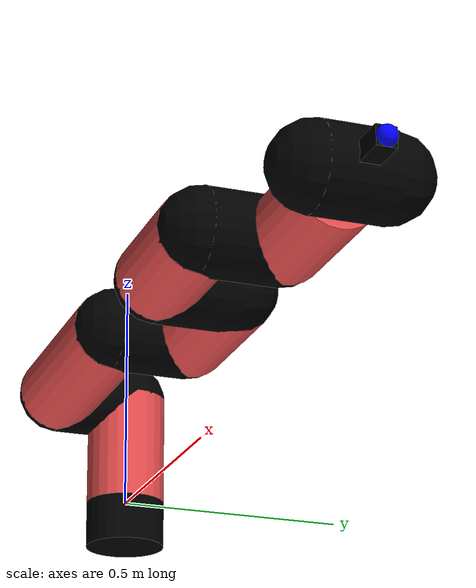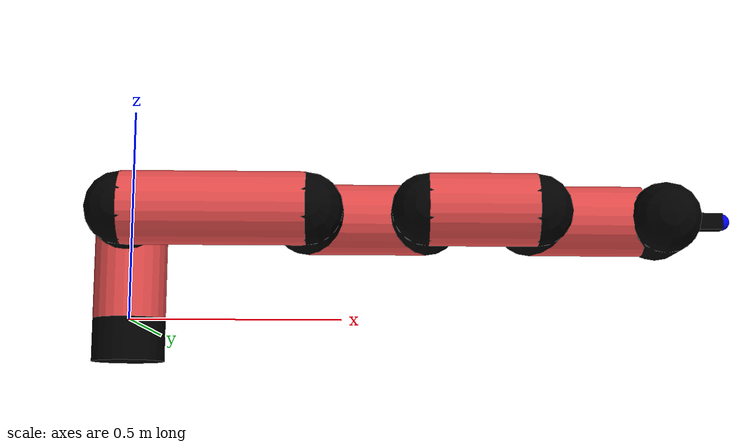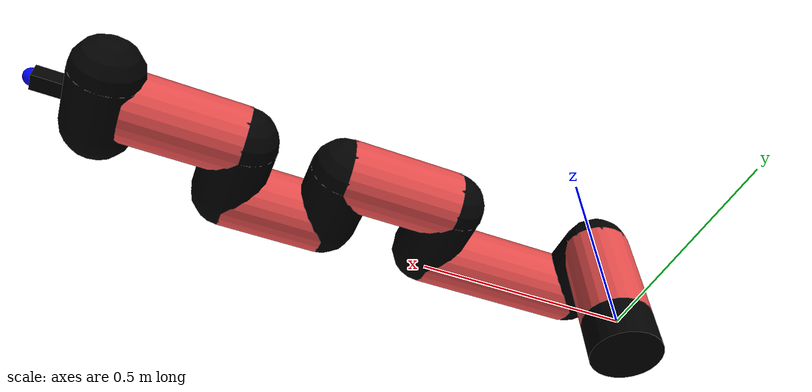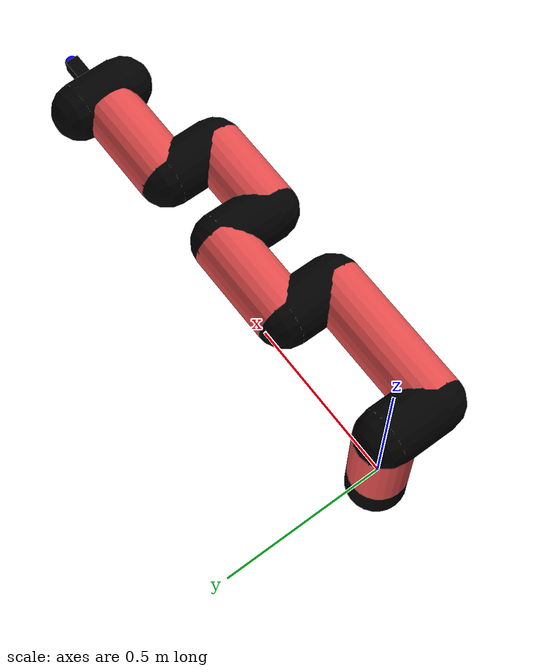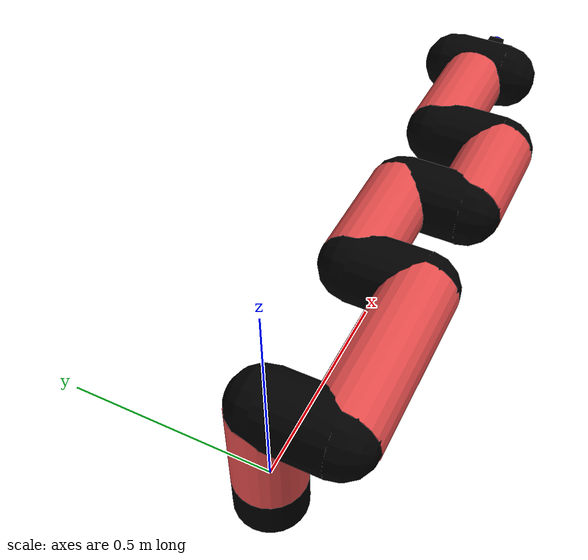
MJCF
<mujoco model="manipulator">
		<compiler angle="degree" coordinate="local" inertiafromgeom="auto" meshdir="meshes/"/>
		<option gravity="0 0 0" integrator="RK4" iterations="30" timestep="0.01"/>

		<default>
		<joint armature="1" limited="true" stiffness="10" damping="15" frictionloss="5.0"/>
		<geom conaffinity="1" condim="3" contype="1" friction=".5 .1 .1" margin="0.002"/>
		<motor ctrllimited="true"/>
		<position ctrllimited="true"/>
		</default>

		<asset>
		<texture builtin="gradient" height="100" rgb1="1.0 1.0 1.0" rgb2="1.0 1.0 1.0" type="skybox" width="100"/>
		<texture builtin="flat" height="32" name="arm_tex" rgb1="0.9 0.3 0.3" type="2d" width="32"/>
		<texture builtin="flat" height="32" name="gripper_tex" rgb1="0.0 0.0 0.0" type="cube" width="32"/>

		<material name="arm_mat" shininess="0.1" specular="0.1" texture="arm_tex"/>
		<material name="gripper_mat" shininess="1" specular="1" texture="gripper_tex"/>
		</asset>

		<worldbody>
		<light cutoff="45" diffuse=".8 .8 .8" dir="0 0.16 -1" directional="false" name="light" pos="0 -2.0 8.0" specular="0.3 0.3 0.3"/>

		<body name="base_link" pos="0 0 -0.1">
		<geom fromto="0 0 0 0 0 0.1" material="arm_mat" name="base_link" rgba="0.0 0.0 0.0 1" size="0.085" type="cylinder"/>
		</body>

		<body name="l1" pos="0 0 0">
<geom fromto="0 0 0 0 0 0.24" material="arm_mat" name="l1" rgba="0.9 0.3 0.3 1" size="0.085" type="cylinder"/>
<geom fromto="0 0 0.24 0 -0.16 0.24" material="arm_mat" name="l1_ex" rgba="0.0 0.0 0.0 1" size="0.085" type="capsule"/>
<joint axis="0 0 1" name="j1" pos="0 0 0" range="-90 90" damping="23.3" frictionloss="8.98"/>

<body name="l2" pos="0 -0.16 0.24">
<geom fromto="0 0 0 0.42 0 0" material="arm_mat" name="l2" rgba="0.9 0.3 0.3 1" size="0.085" type="cylinder"/>
<geom fromto="0.42 0 0 0.42 0.16 0" material="arm_mat" name="l2_ex" rgba="0.0 0.0 0.0 1" size="0.085" type="capsule"/>
<joint axis="0.0 1.0 0.0" name="j2" pos="0 0 0" range="-90 60" damping="25.62" frictionloss="11.68"/>

<body name="l3" pos="0.42 0.16 0">
<geom fromto="0 0 0 0.28 0 0" material="arm_mat" name="l3" rgba="0.9 0.3 0.3 1" size="0.085" type="cylinder"/>
<geom fromto="0.28 0 0 0.28 -0.16 0" material="arm_mat" name="l3_ex" rgba="0.0 0.0 0.0 1" size="0.085" type="capsule"/>
<joint axis="0.0 1.0 0.0" name="j3" pos="0 0 0" range="-30 60" damping="35.57" frictionloss="12.49"/>

<body name="l4" pos="0.28 -0.16 0">
<geom fromto="0 0 0 0.25 0 0" material="arm_mat" name="l4" rgba="0.9 0.3 0.3 1" size="0.085" type="cylinder"/>
<geom fromto="0.25 0 0 0.25 0.16 0" material="arm_mat" name="l4_ex" rgba="0.0 0.0 0.0 1" size="0.085" type="capsule"/>
<joint axis="0.0 1.0 0.0" name="j4" pos="0 0 0" range="-30 60" damping="33.97" frictionloss="7.95"/>

<body name="l5" pos="0.25 0.16 0">
<geom fromto="0 0 0 0.27 0 0" material="arm_mat" name="l5" rgba="0.9 0.3 0.3 1" size="0.085" type="cylinder"/>
<joint axis="0.0 1.0 0.0" name="j5" pos="0 0 0" range="-30 60" damping="25.79" frictionloss="9.63"/>

<body name="gripper" pos="0.27 0 0">
<geom fromto="0.05 -0.07 0 0.05 0.07 0" material="gripper_mat" name="gripper" rgba="0.0 0.0 0.0 1" size="0.085" type="capsule"/><joint axis="1 0 0" name="j6" pos="0 0 0" range="-90 90" damping="15" frictionloss="5.0"/><body name="finger" pos="0.1 0 0">
<geom fromto="0 0.0 0 0.1 0.0 0" material="gripper_mat" name="finger" rgba="0.0 0.0 0.0 1" size="0.020 0.06 0.06" type="box"/>
</body>
<site name="current" pos="0.2 0. 0.0" rgba="0. 0. 1.0 1" size="0.02" type="sphere"/>
</body>
</body>
</body>
</body>
</body>
</body>
</worldbody>
<actuator>
<motor ctrllimited="true" ctrlrange="-1.0 1.0" joint="j1" gear="80.61"/>
<motor ctrllimited="true" ctrlrange="-1.0 1.0" joint="j2" gear="69.68"/>
<motor ctrllimited="true" ctrlrange="-1.0 1.0" joint="j3" gear="90.89"/>
<motor ctrllimited="true" ctrlrange="-1.0 1.0" joint="j4" gear="91.98"/>
<motor ctrllimited="true" ctrlrange="-1.0 1.0" joint="j5" gear="65.69"/>
<motor ctrllimited="true" ctrlrange="-1.0 1.0" joint="j6" gear="80"/>
</actuator>
</mujoco>
